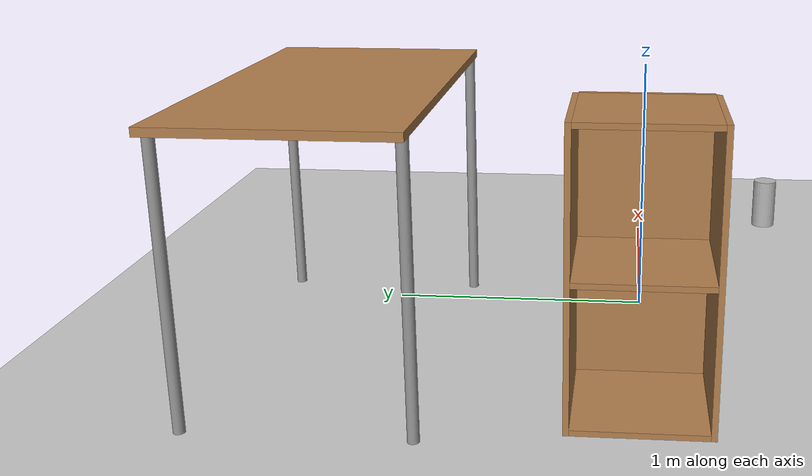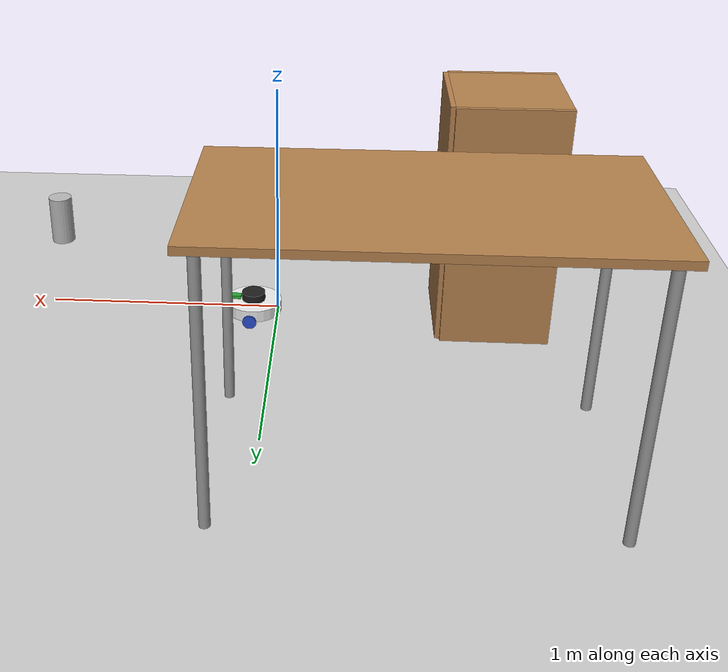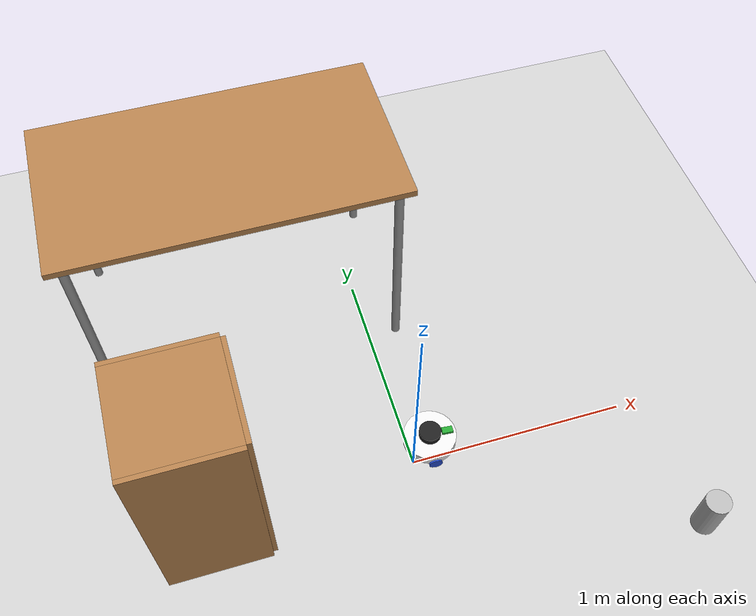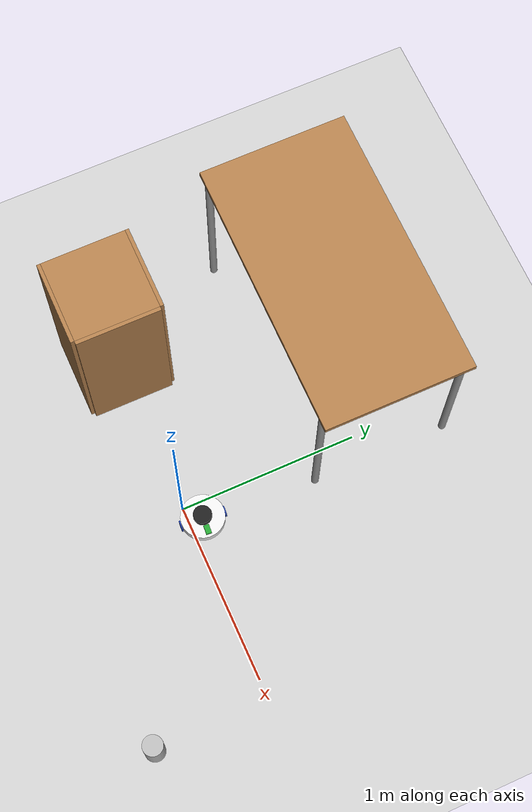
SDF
<sdf version="1.7">
 <world name="default">
  <light name="sun" type="directional">
   <pose>0 0 10 0 -0 0</pose>
   <diffuse>0.8 0.8 0.8 1</diffuse>
   <specular>0.2 0.2 0.2 1</specular>
   <attenuation>
    <range>1000</range>
    <constant>0.9</constant>
    <linear>0.01</linear>
    <quadratic>0.001</quadratic>
   </attenuation>
   <direction>-0.5 0.1 -0.9</direction>
   <spot><inner_angle>0</inner_angle><outer_angle>0</outer_angle><falloff>0</falloff></spot>
  </light>
  <model name="ground_plane">
   <static>1</static>
   <link name="link">
    <collision name="collision">
     <geometry><plane><normal>0 0 1</normal><size>100 100</size></plane></geometry>
     <surface>
      <contact><collide_bitmask>65535</collide_bitmask></contact>
      <friction><ode><mu>100</mu><mu2>50</mu2></ode></friction>
     </surface>
    </collision>
    <visual name="visual">
     <cast_shadows>0</cast_shadows>
     <geometry><plane><normal>0 0 1</normal><size>100 100</size></plane></geometry>
     <material>
      <script><uri>file://media/materials/scripts/gazebo.material</uri><name>Gazebo/Grey</name></script>
     </material>
    </visual>
   </link>
  </model>
  <gravity>0 0 -9.8</gravity>
  <magnetic_field>6e-06 2.3e-05 -4.2e-05</magnetic_field>
  <atmosphere type="adiabatic"/>
  <physics type="ode">
   <max_step_size>0.001</max_step_size>
   <real_time_factor>1</real_time_factor>
   <real_time_update_rate>1000</real_time_update_rate>
  </physics>
  <scene><ambient>0.4 0.4 0.4 1</ambient><background>0.7 0.7 0.7 1</background><shadows>1</shadows></scene>
  <audio><device>default</device></audio>
  <spherical_coordinates>
   <surface_model>EARTH_WGS84</surface_model>
   <latitude_deg>0</latitude_deg>
   <longitude_deg>0</longitude_deg>
   <elevation>0</elevation>
   <heading_deg>0</heading_deg>
  </spherical_coordinates>
  <model name="cabinet">
   <static>1</static>
   <link name="cabinet_bottom_plate">
    <inertial>
     <pose>0 0 -1 0 -0 0</pose>
     <inertia><ixx>2.05</ixx><ixy>0</ixy><ixz>0</ixz><iyy>2.05</iyy><iyz>0</iyz><izz>2.05</izz></inertia>
     <mass>25</mass>
    </inertial>
    <collision name="cabinet_bottom_plate_geom">
     <pose>0 0 0.01 0 -0 0</pose>
     <geometry><box><size>0.45 0.45 0.02</size></box></geometry>
    </collision>
    <visual name="cabinet_bottom_plate_geom_visual">
     <pose>0 0 0.01 0 -0 0</pose>
     <geometry><box><size>0.45 0.45 0.02</size></box></geometry>
     <material>
      <script><uri>file://media/materials/scripts/gazebo.material</uri><name>Gazebo/Wood</name></script>
     </material>
    </visual>
    <collision name="cabinet_bottom_plate_geom_cabinet_back_plate">
     <pose>0.235 0 0.51 0 -0 0</pose>
     <geometry><box><size>0.02 0.45 1.02</size></box></geometry>
    </collision>
    <visual name="cabinet_bottom_plate_geom_cabinet_back_plate_visual">
     <pose>0.235 0 0.51 0 -0 0</pose>
     <geometry><box><size>0.02 0.45 1.02</size></box></geometry>
     <material>
      <script><uri>file://media/materials/scripts/gazebo.material</uri><name>Gazebo/Wood</name></script>
     </material>
    </visual>
    <collision name="cabinet_bottom_plate_geom_cabinet_left_plate">
     <pose>0 0.235 0.51 0 -0 0</pose>
     <geometry><box><size>0.45 0.02 1.02</size></box></geometry>
    </collision>
    <visual name="cabinet_bottom_plate_geom_cabinet_left_plate_visual">
     <pose>0 0.235 0.51 0 -0 0</pose>
     <geometry><box><size>0.45 0.02 1.02</size></box></geometry>
     <material>
      <script><uri>file://media/materials/scripts/gazebo.material</uri><name>Gazebo/Wood</name></script>
     </material>
    </visual>
    <collision name="cabinet_bottom_plate_geom_cabinet_middle_plate">
     <pose>0 0 0.51 0 -0 0</pose>
     <geometry><box><size>0.45 0.45 0.02</size></box></geometry>
    </collision>
    <visual name="cabinet_bottom_plate_geom_cabinet_middle_plate_visual">
     <pose>0 0 0.51 0 -0 0</pose>
     <geometry><box><size>0.45 0.45 0.02</size></box></geometry>
     <material>
      <script><uri>file://media/materials/scripts/gazebo.material</uri><name>Gazebo/Wood</name></script>
     </material>
    </visual>
    <collision name="cabinet_bottom_plate_geom_cabinet_right_plate">
     <pose>0 -0.235 0.51 0 -0 0</pose>
     <geometry><box><size>0.45 0.02 1.02</size></box></geometry>
    </collision>
    <visual name="cabinet_bottom_plate_geom_cabinet_right_plate_visual">
     <pose>0 -0.235 0.51 0 -0 0</pose>
     <geometry><box><size>0.45 0.02 1.02</size></box></geometry>
     <material>
      <script><uri>file://media/materials/scripts/gazebo.material</uri><name>Gazebo/Wood</name></script>
     </material>
    </visual>
    <collision name="cabinet_bottom_plate_geom_cabinet_top_plate">
     <pose>0 0 1.01 0 -0 0</pose>
     <geometry><box><size>0.45 0.45 0.02</size></box></geometry>
    </collision>
    <visual name="cabinet_bottom_plate_geom_cabinet_top_plate_visual">
     <pose>0 0 1.01 0 -0 0</pose>
     <geometry><box><size>0.45 0.45 0.02</size></box></geometry>
     <material>
      <script><uri>file://media/materials/scripts/gazebo.material</uri><name>Gazebo/Wood</name></script>
     </material>
    </visual>
   </link>
   <pose>-0.922097 0.002981 0 0 -0 0</pose>
  </model>
  <model name="table">
   <static>1</static>
   <link name="link">
    <collision name="surface">
     <pose>0 0 1 0 -0 0</pose>
     <geometry><box><size>1.5 0.8 0.03</size></box></geometry>
     <surface><friction><ode><mu>0.6</mu><mu2>0.6</mu2></ode></friction></surface>
    </collision>
    <visual name="visual1">
     <pose>0 0 1 0 -0 0</pose>
     <geometry><box><size>1.5 0.8 0.03</size></box></geometry>
     <material>
      <script><uri>file://media/materials/scripts/gazebo.material</uri><name>Gazebo/Wood</name></script>
     </material>
    </visual>
    <collision name="front_left_leg">
     <pose>0.68 0.38 0.5 0 -0 0</pose>
     <geometry><cylinder><radius>0.02</radius><length>1</length></cylinder></geometry>
    </collision>
    <visual name="front_left_leg">
     <pose>0.68 0.38 0.5 0 -0 0</pose>
     <geometry><cylinder><radius>0.02</radius><length>1</length></cylinder></geometry>
     <material>
      <script><uri>file://media/materials/scripts/gazebo.material</uri><name>Gazebo/Grey</name></script>
     </material>
    </visual>
    <collision name="front_right_leg">
     <pose>0.68 -0.38 0.5 0 -0 0</pose>
     <geometry><cylinder><radius>0.02</radius><length>1</length></cylinder></geometry>
    </collision>
    <visual name="front_right_leg">
     <pose>0.68 -0.38 0.5 0 -0 0</pose>
     <geometry><cylinder><radius>0.02</radius><length>1</length></cylinder></geometry>
     <material>
      <script><uri>file://media/materials/scripts/gazebo.material</uri><name>Gazebo/Grey</name></script>
     </material>
    </visual>
    <collision name="back_right_leg">
     <pose>-0.68 -0.38 0.5 0 -0 0</pose>
     <geometry><cylinder><radius>0.02</radius><length>1</length></cylinder></geometry>
    </collision>
    <visual name="back_right_leg">
     <pose>-0.68 -0.38 0.5 0 -0 0</pose>
     <geometry><cylinder><radius>0.02</radius><length>1</length></cylinder></geometry>
     <material>
      <script><uri>file://media/materials/scripts/gazebo.material</uri><name>Gazebo/Grey</name></script>
     </material>
    </visual>
    <collision name="back_left_leg">
     <pose>-0.68 0.38 0.5 0 -0 0</pose>
     <geometry><cylinder><radius>0.02</radius><length>1</length></cylinder></geometry>
    </collision>
    <visual name="back_left_leg">
     <pose>-0.68 0.38 0.5 0 -0 0</pose>
     <geometry><cylinder><radius>0.02</radius><length>1</length></cylinder></geometry>
     <material>
      <script><uri>file://media/materials/scripts/gazebo.material</uri><name>Gazebo/Grey</name></script>
     </material>
    </visual>
   </link>
   <pose>-0.542101 1.09308 0 0 -0 0</pose>
  </model>
  <model name="beer">
   <link name="link">
    <pose>0 0 0.115 0 -0 0</pose>
    <inertial>
     <mass>0.39</mass>
     <inertia><ixx>0.00058</ixx><ixy>0</ixy><ixz>0</ixz><iyy>0.00058</iyy><iyz>0</iyz><izz>0.00019</izz></inertia>
    </inertial>
    <collision name="collision">
     <geometry><cylinder><radius>0.055</radius><length>0.23</length></cylinder></geometry>
    </collision>
    <visual name="visual">
     <geometry><cylinder><radius>0.055</radius><length>0.23</length></cylinder></geometry>
     <material>
      <script>
       <uri>model://beer/materials/scripts</uri>
       <uri>model://beer/materials/textures</uri>
       <name>Beer/Diffuse</name>
      </script>
     </material>
    </visual>
   </link>
   <pose>1.11757 -0.629318 -2e-06 1e-06 -0 0.041292</pose>
  </model>
  <model name="my_bot">
   <link name="base_link">
    <inertial>
     <pose>-0.014583 0 0.040833 0 -0 0</pose>
     <mass>0.6</mass>
     <inertia>
      <ixx>0.00218125</ixx>
      <ixy>0</ixy>
      <ixz>-0.000401042</ixz>
      <iyy>0.00281927</iyy>
      <iyz>0</iyz>
      <izz>0.00426302</izz>
     </inertia>
    </inertial>
    <collision name="base_link_fixed_joint_lump__chassis_collision">
     <pose>0 0 0.025 0 -0 0</pose>
     <geometry><cylinder><length>0.05</length><radius>0.12</radius></cylinder></geometry>
    </collision>
    <collision name="base_link_fixed_joint_lump__caster_wheel_collision_1">
     <pose>-0.0875 0 -0.005 0 -0 0</pose>
     <geometry><sphere><radius>0.025</radius></sphere></geometry>
     <surface><friction><ode><mu>0.001</mu><mu2>0.001</mu2></ode></friction></surface>
    </collision>
    <visual name="base_link_fixed_joint_lump__chassis_visual">
     <pose>0 0 0.025 0 -0 0</pose>
     <geometry><cylinder><length>0.05</length><radius>0.12</radius></cylinder></geometry>
     <material>
      <script><name>Gazebo/White</name><uri>file://media/materials/scripts/gazebo.material</uri></script>
     </material>
    </visual>
    <visual name="base_link_fixed_joint_lump__camera_link_visual_1">
     <pose>0.08 0 0.05 0 0.005 0</pose>
     <geometry><box><size>0.05 0.03 0.03</size></box></geometry>
     <material>
      <script><name>Gazebo/Green</name><uri>file://media/materials/scripts/gazebo.material</uri></script>
     </material>
    </visual>
    <visual name="base_link_fixed_joint_lump__caster_wheel_visual_2">
     <pose>-0.0875 0 -0.005 0 -0 0</pose>
     <geometry><sphere><radius>0.025</radius></sphere></geometry>
     <material>
      <script><name>Gazebo/Red</name><uri>file://media/materials/scripts/gazebo.material</uri></script>
     </material>
    </visual>
    <visual name="base_link_fixed_joint_lump__laser_frame_visual_3">
     <pose>0 0 0.065 0 -0 0</pose>
     <geometry><cylinder><length>0.04</length><radius>0.05</radius></cylinder></geometry>
     <material>
      <script><name>Gazebo/Black</name><uri>file://media/materials/scripts/gazebo.material</uri></script>
     </material>
    </visual>
    <sensor name="camera" type="camera">
     <visualize>1</visualize>
     <update_rate>10</update_rate>
     <camera>
      <horizontal_fov>1.089</horizontal_fov>
      <image><format>R8G8B8</format><width>640</width><height>480</height></image>
      <clip><near>0.005</near><far>20</far></clip>
     </camera>
     <plugin name="camera_controller" filename="libgazebo_ros_camera.so">
      <frame_name>camera_link_optical</frame_name>
     </plugin>
     <pose>0.08 0 0.05 0 0.005 0</pose>
    </sensor>
    <sensor name="laser" type="ray">
     <visualize>0</visualize>
     <update_rate>10</update_rate>
     <ray>
      <scan>
       <horizontal>
        <samples>360</samples>
        <min_angle>-3.14</min_angle>
        <max_angle>3.14</max_angle>
        <resolution>1</resolution>
       </horizontal>
       <vertical><samples>1</samples><min_angle>0</min_angle><max_angle>0</max_angle></vertical>
      </scan>
      <range><min>0.3</min><max>12</max></range>
     </ray>
     <plugin name="laser_controller" filename="libgazebo_ros_ray_sensor.so">
      <ros><argument>~/out:=scan</argument></ros>
      <output_type>sensor_msgs/LaserScan</output_type>
      <frame_name>laser_frame</frame_name>
     </plugin>
     <pose>0 0 0.065 0 -0 0</pose>
    </sensor>
   </link>
   <joint name="left_wheel_joint" type="revolute">
    <pose relative_to="base_link">0 0.122 0 -1.5708 0 0</pose>
    <parent>base_link</parent>
    <child>left_wheel</child>
    <axis>
     <xyz>0 0 1</xyz>
     <limit><lower>-1e+16</lower><upper>1e+16</upper></limit>
     <dynamics><spring_reference>0</spring_reference><spring_stiffness>0</spring_stiffness></dynamics>
    </axis>
   </joint>
   <link name="left_wheel">
    <pose relative_to="left_wheel_joint">0 0 0 0 -0 0</pose>
    <inertial>
     <mass>0.1</mass>
     <inertia>
      <ixx>2.30333e-05</ixx>
      <ixy>0</ixy>
      <ixz>0</ixz>
      <iyy>2.30333e-05</iyy>
      <iyz>0</iyz>
      <izz>4.5e-05</izz>
     </inertia>
    </inertial>
    <collision name="left_wheel_collision">
     <geometry><cylinder><length>0.008</length><radius>0.03</radius></cylinder></geometry>
    </collision>
    <visual name="left_wheel_visual">
     <geometry><cylinder><length>0.008</length><radius>0.03</radius></cylinder></geometry>
     <material>
      <script><name>Gazebo/Blue</name><uri>file://media/materials/scripts/gazebo.material</uri></script>
     </material>
    </visual>
   </link>
   <joint name="right_wheel_joint" type="revolute">
    <pose relative_to="base_link">0 -0.122 0 1.5708 -0 0</pose>
    <parent>base_link</parent>
    <child>right_wheel</child>
    <axis>
     <xyz>0 0 -1</xyz>
     <limit><lower>-1e+16</lower><upper>1e+16</upper></limit>
     <dynamics><spring_reference>0</spring_reference><spring_stiffness>0</spring_stiffness></dynamics>
    </axis>
   </joint>
   <link name="right_wheel">
    <pose relative_to="right_wheel_joint">0 0 0 0 -0 0</pose>
    <inertial>
     <mass>0.1</mass>
     <inertia>
      <ixx>2.30333e-05</ixx>
      <ixy>0</ixy>
      <ixz>0</ixz>
      <iyy>2.30333e-05</iyy>
      <iyz>0</iyz>
      <izz>4.5e-05</izz>
     </inertia>
    </inertial>
    <collision name="right_wheel_collision">
     <geometry><cylinder><length>0.008</length><radius>0.03</radius></cylinder></geometry>
    </collision>
    <visual name="right_wheel_visual">
     <geometry><cylinder><length>0.008</length><radius>0.03</radius></cylinder></geometry>
     <material>
      <script><name>Gazebo/Blue</name><uri>file://media/materials/scripts/gazebo.material</uri></script>
     </material>
    </visual>
   </link>
   <static>0</static>
   <plugin name="gazebo_ros2_control" filename="libgazebo_ros2_control.so">
    <parameters>/home/observer/Desktop/swarm/ros/install/swarm_bot/share/swarm_bot/config/robot_controllers.yaml</parameters>
   </plugin>
   <pose>0.099787 0.074987 0.03 -2e-06 5.5e-05 -0.074537</pose>
  </model>
 </world>
</sdf>
